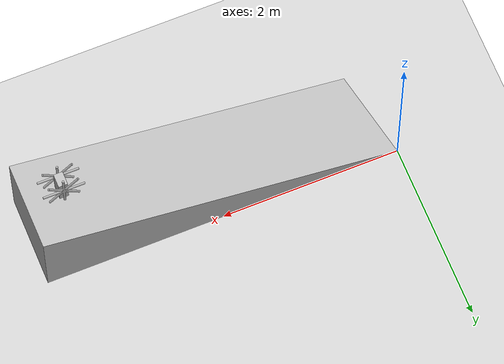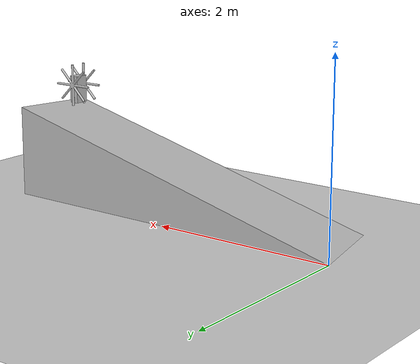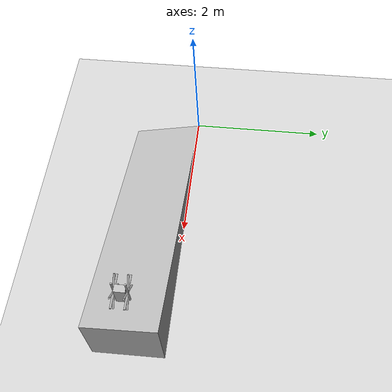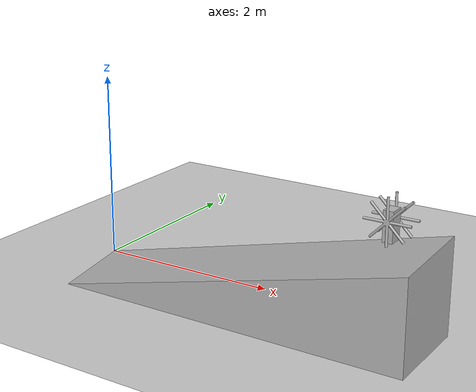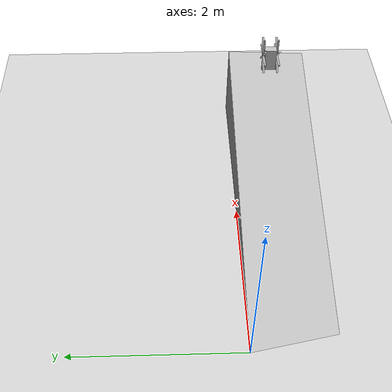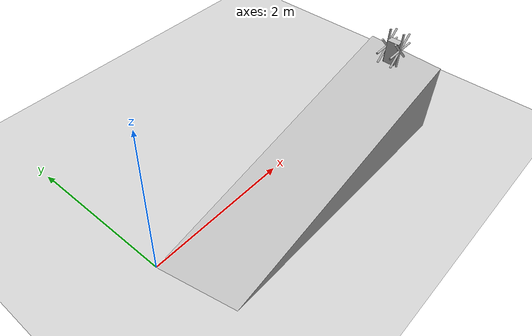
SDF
<?xml version="1.0"?>
<sdf version="1.4">
  <world name="default">
    <include>
      <uri>model://ground_plane</uri>
    </include>
    <include>
      <uri>model://sun</uri>
    </include>

	 <model name="slope">
				<include>
					<uri>model://uslope</uri>
				</include>
	 </model>

	 <model name="roadrunner">
				<include>
					<uri>model://roadrunner</uri>
				</include>
	 </model>
  </world>
</sdf>

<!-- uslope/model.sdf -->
<sdf version="1.4">

    <model name="slope">
      <pose>0 0 0  0 0 0</pose>
      <static>true</static>
      <link name="body">
        <visual name="visual">
          <geometry>
            <mesh><uri>file://uslope.stl</uri></mesh>
          </geometry>
        </visual>
				<collision name="collision">
					<geometry>
						<mesh><uri>file://uslope.stl</uri></mesh>
					</geometry>
				</collision>
			</link>
		</model>

</sdf>

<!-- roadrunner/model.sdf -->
<sdf version="1.4">

		<model name="road_runner">
			<pose>3.6 -0.5 1 0 0 1.5707963268</pose>
			<link name="rrTorso">
				<pose> 0 0 0.231   0 0 0</pose>
				<inertial>
					<mass>2.72</mass>
					<inertia>
						<ixx>1</ixx>
						<ixy>0</ixy>
						<ixz>0</ixz>
						<iyy>1</iyy>
						<iyz>0</iyz>
						<izz>1</izz>
					</inertia>
				</inertial>

				<visual name="visual">
          <geometry>
						<mesh><uri>file://rrTorso.stl</uri></mesh>
          </geometry>
        </visual>
				<collision name="collision">
					<geometry>
							  <mesh><uri>file://rrTorso.stl</uri></mesh>
					</geometry>
				</collision>

			</link>

			<link name="left_wheel">
				<pose> 0.088 0 0.231    0 0 0</pose>
				<inertial>
					<mass>0.5</mass>
					<inertia>
						<ixx>0.01334025</ixx>
						<ixy>0</ixy>
						<ixz>0</ixz>
						<iyy>0.006670125</iyy>
						<iyz>0</iyz>
						<izz>0.006670125</izz>
					</inertia>
				</inertial>
				<visual name="visual">
          <geometry>
						<mesh><uri>file://rrWheel.stl</uri></mesh>
          </geometry>
        </visual>
				<collision name="collision">
					<geometry>
							  <mesh><uri>file://rrWheel.stl</uri></mesh>
					</geometry>
				</collision>
			</link>

			<link name="right_wheel">
				<pose> -0.088 0 0.231    0 0 0</pose>
				<inertial>
					<mass>0.5</mass>
					<inertia>
						<ixx>0.01334025</ixx>
						<ixy>0</ixy>
						<ixz>0</ixz>
						<iyy>0.006670125</iyy>
						<iyz>0</iyz>
						<izz>0.006670125</izz>
					</inertia>
				</inertial>
				<visual name="visual">
          <geometry>
						<mesh><uri>file://rrWheel.stl</uri></mesh>
          </geometry>
        </visual>
				<collision name="collision">
					<geometry>
							  <mesh><uri>file://rrWheel.stl</uri></mesh>
					</geometry>
				</collision>
			</link>
			<joint name="right_bearing" type="revolute">
				<parent>rrTorso</parent>
				<child>right_wheel</child>
				<pose>0 0 0   0 0 0</pose>
				<axis>
					<xyz> 1 0 0</xyz>
				</axis>
				<sensor name="force_torque" type="force_torque">
						  <update_rate>30</update_rate>
				</sensor>
			</joint>
			<plugin name="actuator_plugin" filename="libActuatorPlugin.so">
				<actuator>
					<name>actuator_0</name>
					<joint>right_bearing</joint>
					<index>0</index>
					<type>electric_motor</type>
					<power>20</power>
					<max_velocity>6</max_velocity>
					<max_torque>10.0</max_torque>
				</actuator>
			</plugin>

			<joint name="left_bearing" type="revolute">
				<parent>rrTorso</parent>
				<child>left_wheel</child>
				<pose>0 0 0   0 0 0</pose>
				<axis>
					<xyz> 1 0 0</xyz>
				</axis>
				<sensor name="force_torque" type="force_torque">
						  <update_rate>30</update_rate>
				</sensor>
			</joint>
			<plugin name="actuator_plugin" filename="libActuatorPlugin.so">
				<actuator>
					<name>actuator_1</name>
					<joint>left_bearing</joint>
					<index>1</index>
					<type>electric_motor</type>
					<power>20</power>
					<max_velocity>6</max_velocity>
					<max_torque>10.0</max_torque>
				</actuator>
			</plugin>

			<plugin name="rrpush" filename="librrpush.dylib"/>

		</model>
</sdf>
